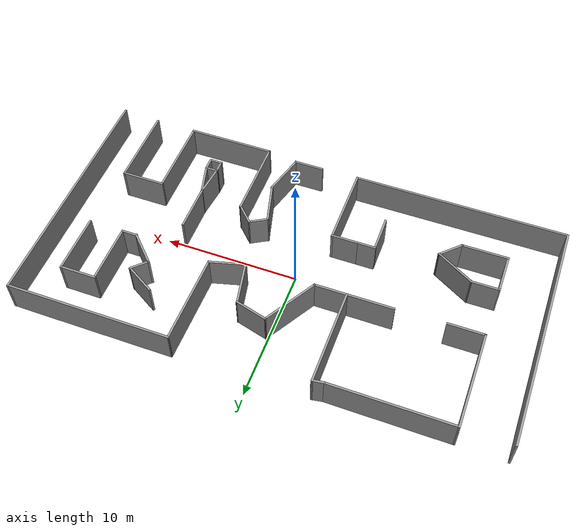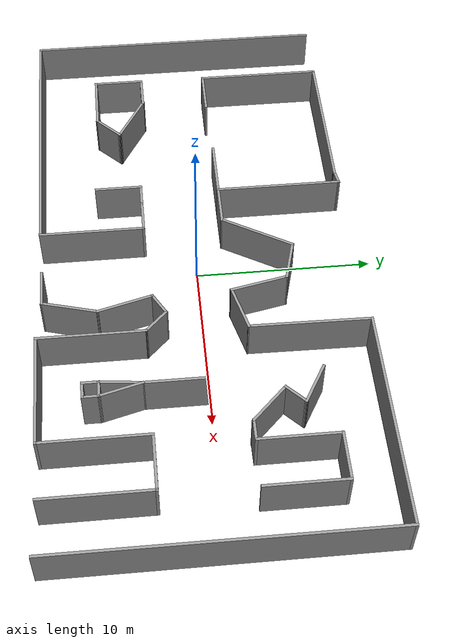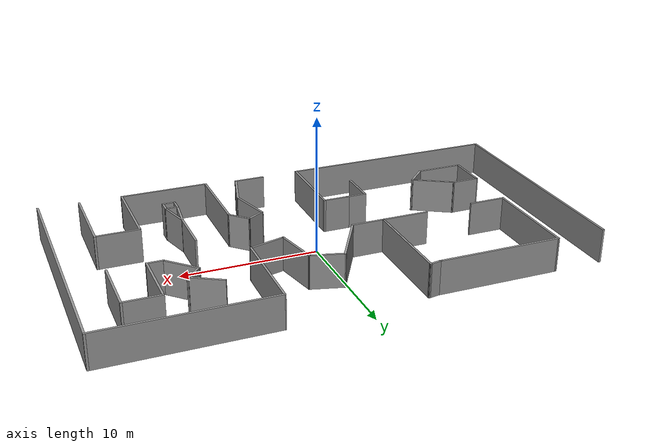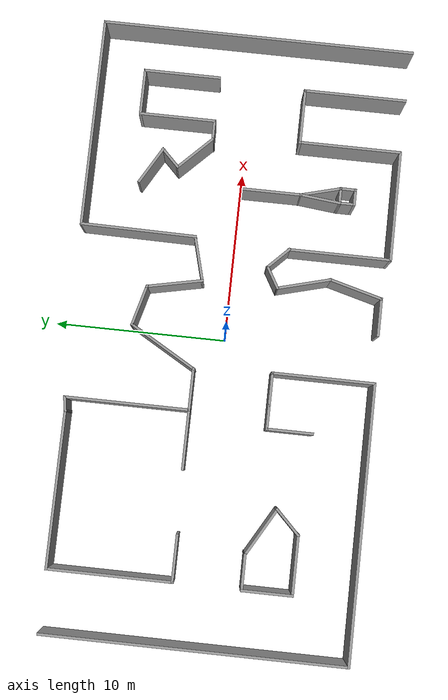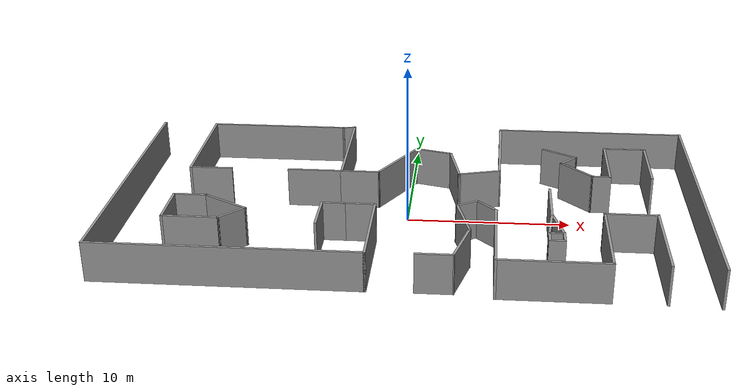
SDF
<sdf version="1.6">
 <world name="default">
  <model name="maze_for_two">
   <pose>0.098867 -0.089814 0 0 -0 0</pose>
   <link name="Wall_0">
    <collision name="Wall_0_Collision">
     <geometry><box><size>17.5 0.15 2.5</size></box></geometry>
     <pose>0 0 1.25 0 -0 0</pose>
    </collision>
    <visual name="Wall_0_Visual">
     <pose>0 0 1.25 0 -0 0</pose>
     <geometry><box><size>17.5 0.15 2.5</size></box></geometry>
     <material>
      <script><uri>file://media/materials/scripts/gazebo.material</uri><name>Gazebo/Grey</name></script>
      <ambient>1 1 1 1</ambient>
     </material>
     <meta><layer>0</layer></meta>
    </visual>
    <pose>-17.6993 0.034582 0 0 -0 -1.5708</pose>
   </link>
   <link name="Wall_1">
    <collision name="Wall_1_Collision">
     <geometry><box><size>16 0.15 2.5</size></box></geometry>
     <pose>0 0 1.25 0 -0 0</pose>
    </collision>
    <visual name="Wall_1_Visual">
     <pose>0 0 1.25 0 -0 0</pose>
     <geometry><box><size>16 0.15 2.5</size></box></geometry>
     <material>
      <script><uri>file://media/materials/scripts/gazebo.material</uri><name>Gazebo/Grey</name></script>
      <ambient>1 1 1 1</ambient>
     </material>
     <meta><layer>0</layer></meta>
    </visual>
    <pose>-9.77431 -8.64042 0 0 -0 0</pose>
   </link>
   <link name="Wall_11">
    <collision name="Wall_11_Collision">
     <geometry><box><size>3.5 0.15 2.5</size></box></geometry>
     <pose>0 0 1.25 0 -0 0</pose>
    </collision>
    <visual name="Wall_11_Visual">
     <pose>0 0 1.25 0 -0 0</pose>
     <geometry><box><size>3.5 0.15 2.5</size></box></geometry>
     <material>
      <script><uri>file://media/materials/scripts/gazebo.material</uri><name>Gazebo/Grey</name></script>
      <ambient>1 1 1 1</ambient>
     </material>
     <meta><layer>0</layer></meta>
    </visual>
    <pose>-12.4642 -5.14433 0 0 -0 0</pose>
   </link>
   <link name="Wall_13">
    <collision name="Wall_13_Collision">
     <geometry><box><size>2.75 0.15 2.5</size></box></geometry>
     <pose>0 0 1.25 0 -0 0</pose>
    </collision>
    <visual name="Wall_13_Visual">
     <pose>0 0 1.25 0 -0 0</pose>
     <geometry><box><size>2.75 0.15 2.5</size></box></geometry>
     <material>
      <script><uri>file://media/materials/scripts/gazebo.material</uri><name>Gazebo/Grey</name></script>
      <ambient>1 1 1 1</ambient>
     </material>
     <meta><layer>0</layer></meta>
    </visual>
    <pose>-12.7988 1.60958 0 0 -0 0</pose>
   </link>
   <link name="Wall_15">
    <collision name="Wall_15_Collision">
     <geometry><box><size>3.5 0.15 2.5</size></box></geometry>
     <pose>0 0 1.25 0 -0 0</pose>
    </collision>
    <visual name="Wall_15_Visual">
     <pose>0 0 1.25 0 -0 0</pose>
     <geometry><box><size>3.5 0.15 2.5</size></box></geometry>
     <material>
      <script><uri>file://media/materials/scripts/gazebo.material</uri><name>Gazebo/Grey</name></script>
      <ambient>1 1 1 1</ambient>
     </material>
     <meta><layer>0</layer></meta>
    </visual>
    <pose>-6.1127 1.71077 0 0 -0 0</pose>
   </link>
   <link name="Wall_17">
    <collision name="Wall_17_Collision">
     <geometry><box><size>9.04244 0.15 2.5</size></box></geometry>
     <pose>0 0 1.25 0 -0 0</pose>
    </collision>
    <visual name="Wall_17_Visual">
     <pose>0 0 1.25 0 -0 0</pose>
     <geometry><box><size>9.04244 0.15 2.5</size></box></geometry>
     <material>
      <script><uri>file://media/materials/scripts/gazebo.material</uri><name>Gazebo/Grey</name></script>
      <ambient>1 1 1 1</ambient>
     </material>
     <meta><layer>0</layer></meta>
    </visual>
    <pose>-9.65256 8.69949 0 0 -0 3.13932</pose>
   </link>
   <link name="Wall_19">
    <collision name="Wall_19_Collision">
     <geometry><box><size>7.25 0.15 2.5</size></box></geometry>
     <pose>0 0 1.25 0 -0 0</pose>
    </collision>
    <visual name="Wall_19_Visual">
     <pose>0 0 1.25 0 -0 0</pose>
     <geometry><box><size>7.25 0.15 2.5</size></box></geometry>
     <material>
      <script><uri>file://media/materials/scripts/gazebo.material</uri><name>Gazebo/Grey</name></script>
      <ambient>1 1 1 1</ambient>
     </material>
     <meta><layer>0</layer></meta>
    </visual>
    <pose>-4.4377 5.26077 0 0 -0 1.5708</pose>
   </link>
   <link name="Wall_2">
    <collision name="Wall_2_Collision">
     <geometry><box><size>6 0.15 2.5</size></box></geometry>
     <pose>0 0 1.25 0 -0 0</pose>
    </collision>
    <visual name="Wall_2_Visual">
     <pose>0 0 1.25 0 -0 0</pose>
     <geometry><box><size>6 0.15 2.5</size></box></geometry>
     <material>
      <script><uri>file://media/materials/scripts/gazebo.material</uri><name>Gazebo/Grey</name></script>
      <ambient>1 1 1 1</ambient>
     </material>
     <meta><layer>0</layer></meta>
    </visual>
    <pose>-1.84932 -5.71542 0 0 -0 1.5708</pose>
   </link>
   <link name="Wall_20">
    <collision name="Wall_20_Collision">
     <geometry><box><size>0.928179 0.15 2.5</size></box></geometry>
     <pose>0 0 1.25 0 -0 0</pose>
    </collision>
    <visual name="Wall_20_Visual">
     <pose>0 0 1.25 0 -0 0</pose>
     <geometry><box><size>0.928179 0.15 2.5</size></box></geometry>
     <material>
      <script><uri>file://media/materials/scripts/gazebo.material</uri><name>Gazebo/Grey</name></script>
      <ambient>1 1 1 1</ambient>
     </material>
     <meta><layer>0</layer></meta>
    </visual>
    <pose>-4.82203 8.75008 0 0 -0 -2.98499</pose>
   </link>
   <link name="Wall_22">
    <collision name="Wall_22_Collision">
     <geometry><box><size>2 0.15 2.5</size></box></geometry>
     <pose>0 0 1.25 0 -0 0</pose>
    </collision>
    <visual name="Wall_22_Visual">
     <pose>0 0 1.25 0 -0 0</pose>
     <geometry><box><size>2 0.15 2.5</size></box></geometry>
     <material>
      <script><uri>file://media/materials/scripts/gazebo.material</uri><name>Gazebo/Grey</name></script>
      <ambient>1 1 1 1</ambient>
     </material>
     <meta><layer>0</layer></meta>
    </visual>
    <pose>-10.1352 -4.49026 0 0 -0 0.785398</pose>
   </link>
   <link name="Wall_23">
    <collision name="Wall_23_Collision">
     <geometry><box><size>3.25 0.15 2.5</size></box></geometry>
     <pose>0 0 1.25 0 -0 0</pose>
    </collision>
    <visual name="Wall_23_Visual">
     <pose>0 0 1.25 0 -0 0</pose>
     <geometry><box><size>3.25 0.15 2.5</size></box></geometry>
     <material>
      <script><uri>file://media/materials/scripts/gazebo.material</uri><name>Gazebo/Grey</name></script>
      <ambient>1 1 1 1</ambient>
     </material>
     <meta><layer>0</layer></meta>
    </visual>
    <pose>-10.8234 -3.06119 0 0 -0 2.61799</pose>
   </link>
   <link name="Wall_24">
    <collision name="Wall_24_Collision">
     <geometry><box><size>2.12349 0.15 2.5</size></box></geometry>
     <pose>0 0 1.25 0 -0 0</pose>
    </collision>
    <visual name="Wall_24_Visual">
     <pose>0 0 1.25 0 -0 0</pose>
     <geometry><box><size>2.12349 0.15 2.5</size></box></geometry>
     <material>
      <script><uri>file://media/materials/scripts/gazebo.material</uri><name>Gazebo/Grey</name></script>
      <ambient>1 1 1 1</ambient>
     </material>
     <meta><layer>0</layer></meta>
    </visual>
    <pose>-13.1525 -2.29026 0 0 -0 -3.13746</pose>
   </link>
   <link name="Wall_26">
    <collision name="Wall_26_Collision">
     <geometry><box><size>2.5 0.15 2.5</size></box></geometry>
     <pose>0 0 1.25 0 -0 0</pose>
    </collision>
    <visual name="Wall_26_Visual">
     <pose>0 0 1.25 0 -0 0</pose>
     <geometry><box><size>2.5 0.15 2.5</size></box></geometry>
     <material>
      <script><uri>file://media/materials/scripts/gazebo.material</uri><name>Gazebo/Grey</name></script>
      <ambient>1 1 1 1</ambient>
     </material>
     <meta><layer>0</layer></meta>
    </visual>
    <pose>-3.2627 1.71077 0 0 -0 0</pose>
   </link>
   <link name="Wall_28">
    <collision name="Wall_28_Collision">
     <geometry><box><size>6 0.15 2.5</size></box></geometry>
     <pose>0 0 1.25 0 -0 0</pose>
    </collision>
    <visual name="Wall_28_Visual">
     <pose>0 0 1.25 0 -0 0</pose>
     <geometry><box><size>6 0.15 2.5</size></box></geometry>
     <material>
      <script><uri>file://media/materials/scripts/gazebo.material</uri><name>Gazebo/Grey</name></script>
      <ambient>1 1 1 1</ambient>
     </material>
     <meta><layer>0</layer></meta>
    </visual>
    <pose>14.7865 -5.96359 0 0 -0 1.5708</pose>
   </link>
   <link name="Wall_29">
    <collision name="Wall_29_Collision">
     <geometry><box><size>3.25 0.15 2.5</size></box></geometry>
     <pose>0 0 1.25 0 -0 0</pose>
    </collision>
    <visual name="Wall_29_Visual">
     <pose>0 0 1.25 0 -0 0</pose>
     <geometry><box><size>3.25 0.15 2.5</size></box></geometry>
     <material>
      <script><uri>file://media/materials/scripts/gazebo.material</uri><name>Gazebo/Grey</name></script>
      <ambient>1 1 1 1</ambient>
     </material>
     <meta><layer>0</layer></meta>
    </visual>
    <pose>13.2365 -3.03859 0 0 -0 3.14159</pose>
   </link>
   <link name="Wall_3">
    <collision name="Wall_3_Collision">
     <geometry><box><size>2 0.15 2.5</size></box></geometry>
     <pose>0 0 1.25 0 -0 0</pose>
    </collision>
    <visual name="Wall_3_Visual">
     <pose>0 0 1.25 0 -0 0</pose>
     <geometry><box><size>2 0.15 2.5</size></box></geometry>
     <material>
      <script><uri>file://media/materials/scripts/gazebo.material</uri><name>Gazebo/Grey</name></script>
      <ambient>1 1 1 1</ambient>
     </material>
     <meta><layer>0</layer></meta>
    </visual>
    <pose>-2.77432 -2.79042 0 0 -0 3.14159</pose>
   </link>
   <link name="Wall_30">
    <collision name="Wall_30_Collision">
     <geometry><box><size>6 0.15 2.5</size></box></geometry>
     <pose>0 0 1.25 0 -0 0</pose>
    </collision>
    <visual name="Wall_30_Visual">
     <pose>0 0 1.25 0 -0 0</pose>
     <geometry><box><size>6 0.15 2.5</size></box></geometry>
     <material>
      <script><uri>file://media/materials/scripts/gazebo.material</uri><name>Gazebo/Grey</name></script>
      <ambient>1 1 1 1</ambient>
     </material>
     <meta><layer>0</layer></meta>
    </visual>
    <pose>11.6865 -5.96359 0 0 -0 -1.5708</pose>
   </link>
   <link name="Wall_31">
    <collision name="Wall_31_Collision">
     <geometry><box><size>6.5 0.15 2.5</size></box></geometry>
     <pose>0 0 1.25 0 -0 0</pose>
    </collision>
    <visual name="Wall_31_Visual">
     <pose>0 0 1.25 0 -0 0</pose>
     <geometry><box><size>6.5 0.15 2.5</size></box></geometry>
     <material>
      <script><uri>file://media/materials/scripts/gazebo.material</uri><name>Gazebo/Grey</name></script>
      <ambient>1 1 1 1</ambient>
     </material>
     <meta><layer>0</layer></meta>
    </visual>
    <pose>8.51151 -8.88859 0 0 -0 3.14159</pose>
   </link>
   <link name="Wall_32">
    <collision name="Wall_32_Collision">
     <geometry><box><size>6 0.15 2.5</size></box></geometry>
     <pose>0 0 1.25 0 -0 0</pose>
    </collision>
    <visual name="Wall_32_Visual">
     <pose>0 0 1.25 0 -0 0</pose>
     <geometry><box><size>6 0.15 2.5</size></box></geometry>
     <material>
      <script><uri>file://media/materials/scripts/gazebo.material</uri><name>Gazebo/Grey</name></script>
      <ambient>1 1 1 1</ambient>
     </material>
     <meta><layer>0</layer></meta>
    </visual>
    <pose>5.33651 -5.96359 0 0 -0 1.5708</pose>
   </link>
   <link name="Wall_33">
    <collision name="Wall_33_Collision">
     <geometry><box><size>1.75 0.15 2.5</size></box></geometry>
     <pose>0 0 1.25 0 -0 0</pose>
    </collision>
    <visual name="Wall_33_Visual">
     <pose>0 0 1.25 0 -0 0</pose>
     <geometry><box><size>1.75 0.15 2.5</size></box></geometry>
     <material>
      <script><uri>file://media/materials/scripts/gazebo.material</uri><name>Gazebo/Grey</name></script>
      <ambient>1 1 1 1</ambient>
     </material>
     <meta><layer>0</layer></meta>
    </visual>
    <pose>4.77083 -2.47291 0 0 -0 2.35619</pose>
   </link>
   <link name="Wall_34">
    <collision name="Wall_34_Collision">
     <geometry><box><size>1.5 0.15 2.5</size></box></geometry>
     <pose>0 0 1.25 0 -0 0</pose>
    </collision>
    <visual name="Wall_34_Visual">
     <pose>0 0 1.25 0 -0 0</pose>
     <geometry><box><size>1.5 0.15 2.5</size></box></geometry>
     <material>
      <script><uri>file://media/materials/scripts/gazebo.material</uri><name>Gazebo/Grey</name></script>
      <ambient>1 1 1 1</ambient>
     </material>
     <meta><layer>0</layer></meta>
    </visual>
    <pose>3.62058 -2.24472 0 0 -0 -2.61799</pose>
   </link>
   <link name="Wall_36">
    <collision name="Wall_36_Collision">
     <geometry><box><size>2.75 0.15 2.5</size></box></geometry>
     <pose>0 0 1.25 0 -0 0</pose>
    </collision>
    <visual name="Wall_36_Visual">
     <pose>0 0 1.25 0 -0 0</pose>
     <geometry><box><size>2.75 0.15 2.5</size></box></geometry>
     <material>
      <script><uri>file://media/materials/scripts/gazebo.material</uri><name>Gazebo/Grey</name></script>
      <ambient>1 1 1 1</ambient>
     </material>
     <meta><layer>0</layer></meta>
    </visual>
    <pose>4.26964 2.08769 0 0 -0 0.261799</pose>
   </link>
   <link name="Wall_4">
    <collision name="Wall_4_Collision">
     <geometry><box><size>1.5 0.15 2.5</size></box></geometry>
     <pose>0 0 1.25 0 -0 0</pose>
    </collision>
    <visual name="Wall_4_Visual">
     <pose>0 0 1.25 0 -0 0</pose>
     <geometry><box><size>1.5 0.15 2.5</size></box></geometry>
     <material>
      <script><uri>file://media/materials/scripts/gazebo.material</uri><name>Gazebo/Grey</name></script>
      <ambient>1 1 1 1</ambient>
     </material>
     <meta><layer>0</layer></meta>
    </visual>
    <pose>-4.37432 -2.79042 0 0 -0 3.14159</pose>
   </link>
   <link name="Wall_43">
    <collision name="Wall_43_Collision">
     <geometry><box><size>3.5 0.15 2.5</size></box></geometry>
     <pose>0 0 1.25 0 -0 0</pose>
    </collision>
    <visual name="Wall_43_Visual">
     <pose>0 0 1.25 0 -0 0</pose>
     <geometry><box><size>3.5 0.15 2.5</size></box></geometry>
     <material>
      <script><uri>file://media/materials/scripts/gazebo.material</uri><name>Gazebo/Grey</name></script>
      <ambient>1 1 1 1</ambient>
     </material>
     <meta><layer>0</layer></meta>
    </visual>
    <pose>8.59681 -1.71164 0 0 -0 1.5708</pose>
   </link>
   <link name="Wall_45">
    <collision name="Wall_45_Collision">
     <geometry><box><size>2.5 0.15 2.5</size></box></geometry>
     <pose>0 0 1.25 0 -0 0</pose>
    </collision>
    <visual name="Wall_45_Visual">
     <pose>0 0 1.25 0 -0 0</pose>
     <geometry><box><size>2.5 0.15 2.5</size></box></geometry>
     <material>
      <script><uri>file://media/materials/scripts/gazebo.material</uri><name>Gazebo/Grey</name></script>
      <ambient>1 1 1 1</ambient>
     </material>
     <meta><layer>0</layer></meta>
    </visual>
    <pose>8.90092 -4.5216 0 0 -0 -1.309</pose>
   </link>
   <link name="Wall_46">
    <collision name="Wall_46_Collision">
     <geometry><box><size>1 0.15 2.5</size></box></geometry>
     <pose>0 0 1.25 0 -0 0</pose>
    </collision>
    <visual name="Wall_46_Visual">
     <pose>0 0 1.25 0 -0 0</pose>
     <geometry><box><size>1 0.15 2.5</size></box></geometry>
     <material>
      <script><uri>file://media/materials/scripts/gazebo.material</uri><name>Gazebo/Grey</name></script>
      <ambient>1 1 1 1</ambient>
     </material>
     <meta><layer>0</layer></meta>
    </visual>
    <pose>8.78003 -5.65656 0 0 -0 3.14159</pose>
   </link>
   <link name="Wall_47">
    <collision name="Wall_47_Collision">
     <geometry><box><size>2.43276 0.15 2.5</size></box></geometry>
     <pose>0 0 1.25 0 -0 0</pose>
    </collision>
    <visual name="Wall_47_Visual">
     <pose>0 0 1.25 0 -0 0</pose>
     <geometry><box><size>2.43276 0.15 2.5</size></box></geometry>
     <material>
      <script><uri>file://media/materials/scripts/gazebo.material</uri><name>Gazebo/Grey</name></script>
      <ambient>1 1 1 1</ambient>
     </material>
     <meta><layer>0</layer></meta>
    </visual>
    <pose>8.47592 -4.5216 0 0 -0 1.46468</pose>
   </link>
   <link name="Wall_5">
    <collision name="Wall_5_Collision">
     <geometry><box><size>2.75 0.15 2.5</size></box></geometry>
     <pose>0 0 1.25 0 -0 0</pose>
    </collision>
    <visual name="Wall_5_Visual">
     <pose>0 0 1.25 0 -0 0</pose>
     <geometry><box><size>2.75 0.15 2.5</size></box></geometry>
     <material>
      <script><uri>file://media/materials/scripts/gazebo.material</uri><name>Gazebo/Grey</name></script>
      <ambient>1 1 1 1</ambient>
     </material>
     <meta><layer>0</layer></meta>
    </visual>
    <pose>-5.04931 -4.09042 0 0 -0 -1.5708</pose>
   </link>
   <link name="Wall_51">
    <collision name="Wall_51_Collision">
     <geometry><box><size>1 0.15 2.5</size></box></geometry>
     <pose>0 0 1.25 0 -0 0</pose>
    </collision>
    <visual name="Wall_51_Visual">
     <pose>0 0 1.25 0 -0 0</pose>
     <geometry><box><size>1 0.15 2.5</size></box></geometry>
     <material>
      <script><uri>file://media/materials/scripts/gazebo.material</uri><name>Gazebo/Grey</name></script>
      <ambient>1 1 1 1</ambient>
     </material>
     <meta><layer>0</layer></meta>
    </visual>
    <pose>8.35504 -6.08156 0 0 -0 -1.5708</pose>
   </link>
   <link name="Wall_52">
    <collision name="Wall_52_Collision">
     <geometry><box><size>1 0.15 2.5</size></box></geometry>
     <pose>0 0 1.25 0 -0 0</pose>
    </collision>
    <visual name="Wall_52_Visual">
     <pose>0 0 1.25 0 -0 0</pose>
     <geometry><box><size>1 0.15 2.5</size></box></geometry>
     <material>
      <script><uri>file://media/materials/scripts/gazebo.material</uri><name>Gazebo/Grey</name></script>
      <ambient>1 1 1 1</ambient>
     </material>
     <meta><layer>0</layer></meta>
    </visual>
    <pose>8.78003 -6.50656 0 0 -0 0</pose>
   </link>
   <link name="Wall_53">
    <collision name="Wall_53_Collision">
     <geometry><box><size>1 0.15 2.5</size></box></geometry>
     <pose>0 0 1.25 0 -0 0</pose>
    </collision>
    <visual name="Wall_53_Visual">
     <pose>0 0 1.25 0 -0 0</pose>
     <geometry><box><size>1 0.15 2.5</size></box></geometry>
     <material>
      <script><uri>file://media/materials/scripts/gazebo.material</uri><name>Gazebo/Grey</name></script>
      <ambient>1 1 1 1</ambient>
     </material>
     <meta><layer>0</layer></meta>
    </visual>
    <pose>9.20504 -6.08156 0 0 -0 1.5708</pose>
   </link>
   <link name="Wall_55">
    <collision name="Wall_55_Collision">
     <geometry><box><size>18.25 0.15 2.5</size></box></geometry>
     <pose>0 0 1.25 0 -0 0</pose>
    </collision>
    <visual name="Wall_55_Visual">
     <pose>0 0 1.25 0 -0 0</pose>
     <geometry><box><size>18.25 0.15 2.5</size></box></geometry>
     <material>
      <script><uri>file://media/materials/scripts/gazebo.material</uri><name>Gazebo/Grey</name></script>
      <ambient>1 1 1 1</ambient>
     </material>
     <meta><layer>0</layer></meta>
    </visual>
    <pose>17.6993 -0.000416 0 0 -0 1.5708</pose>
   </link>
   <link name="Wall_56">
    <collision name="Wall_56_Collision">
     <geometry><box><size>12.25 0.15 2.5</size></box></geometry>
     <pose>0 0 1.25 0 -0 0</pose>
    </collision>
    <visual name="Wall_56_Visual">
     <pose>0 0 1.25 0 -0 0</pose>
     <geometry><box><size>12.25 0.15 2.5</size></box></geometry>
     <material>
      <script><uri>file://media/materials/scripts/gazebo.material</uri><name>Gazebo/Grey</name></script>
      <ambient>1 1 1 1</ambient>
     </material>
     <meta><layer>0</layer></meta>
    </visual>
    <pose>11.6493 9.04958 0 0 -0 3.14159</pose>
   </link>
   <link name="Wall_57">
    <collision name="Wall_57_Collision">
     <geometry><box><size>6.77584 0.15 2.5</size></box></geometry>
     <pose>0 0 1.25 0 -0 0</pose>
    </collision>
    <visual name="Wall_57_Visual">
     <pose>0 0 1.25 0 -0 0</pose>
     <geometry><box><size>6.77584 0.15 2.5</size></box></geometry>
     <material>
      <script><uri>file://media/materials/scripts/gazebo.material</uri><name>Gazebo/Grey</name></script>
      <ambient>1 1 1 1</ambient>
     </material>
     <meta><layer>0</layer></meta>
    </visual>
    <pose>5.56233 5.73687 0 0 -0 -1.58196</pose>
   </link>
   <link name="Wall_59">
    <collision name="Wall_59_Collision">
     <geometry><box><size>4.5 0.15 2.5</size></box></geometry>
     <pose>0 0 1.25 0 -0 0</pose>
    </collision>
    <visual name="Wall_59_Visual">
     <pose>0 0 1.25 0 -0 0</pose>
     <geometry><box><size>4.5 0.15 2.5</size></box></geometry>
     <material>
      <script><uri>file://media/materials/scripts/gazebo.material</uri><name>Gazebo/Grey</name></script>
      <ambient>1 1 1 1</ambient>
     </material>
     <meta><layer>0</layer></meta>
    </visual>
    <pose>15.0292 4.20941 0 0 -0 1.5708</pose>
   </link>
   <link name="Wall_60">
    <collision name="Wall_60_Collision">
     <geometry><box><size>2.75 0.15 2.5</size></box></geometry>
     <pose>0 0 1.25 0 -0 0</pose>
    </collision>
    <visual name="Wall_60_Visual">
     <pose>0 0 1.25 0 -0 0</pose>
     <geometry><box><size>2.75 0.15 2.5</size></box></geometry>
     <material>
      <script><uri>file://media/materials/scripts/gazebo.material</uri><name>Gazebo/Grey</name></script>
      <ambient>1 1 1 1</ambient>
     </material>
     <meta><layer>0</layer></meta>
    </visual>
    <pose>13.7292 6.38441 0 0 -0 3.14159</pose>
   </link>
   <link name="Wall_61">
    <collision name="Wall_61_Collision">
     <geometry><box><size>4.5 0.15 2.5</size></box></geometry>
     <pose>0 0 1.25 0 -0 0</pose>
    </collision>
    <visual name="Wall_61_Visual">
     <pose>0 0 1.25 0 -0 0</pose>
     <geometry><box><size>4.5 0.15 2.5</size></box></geometry>
     <material>
      <script><uri>file://media/materials/scripts/gazebo.material</uri><name>Gazebo/Grey</name></script>
      <ambient>1 1 1 1</ambient>
     </material>
     <meta><layer>0</layer></meta>
    </visual>
    <pose>12.4292 4.20941 0 0 -0 -1.5708</pose>
   </link>
   <link name="Wall_62">
    <collision name="Wall_62_Collision">
     <geometry><box><size>1.25 0.15 2.5</size></box></geometry>
     <pose>0 0 1.25 0 -0 0</pose>
    </collision>
    <visual name="Wall_62_Visual">
     <pose>0 0 1.25 0 -0 0</pose>
     <geometry><box><size>1.25 0.15 2.5</size></box></geometry>
     <material>
      <script><uri>file://media/materials/scripts/gazebo.material</uri><name>Gazebo/Grey</name></script>
      <ambient>1 1 1 1</ambient>
     </material>
     <meta><layer>0</layer></meta>
    </visual>
    <pose>11.8792 2.03441 0 0 -0 3.14159</pose>
   </link>
   <link name="Wall_64">
    <collision name="Wall_64_Collision">
     <geometry><box><size>2.75 0.15 2.5</size></box></geometry>
     <pose>0 0 1.25 0 -0 0</pose>
    </collision>
    <visual name="Wall_64_Visual">
     <pose>0 0 1.25 0 -0 0</pose>
     <geometry><box><size>2.75 0.15 2.5</size></box></geometry>
     <material>
      <script><uri>file://media/materials/scripts/gazebo.material</uri><name>Gazebo/Grey</name></script>
      <ambient>1 1 1 1</ambient>
     </material>
     <meta><layer>0</layer></meta>
    </visual>
    <pose>10.41 2.95365 0 0 -0 2.35619</pose>
   </link>
   <link name="Wall_65">
    <collision name="Wall_65_Collision">
     <geometry><box><size>1.5 0.15 2.5</size></box></geometry>
     <pose>0 0 1.25 0 -0 0</pose>
    </collision>
    <visual name="Wall_65_Visual">
     <pose>0 0 1.25 0 -0 0</pose>
     <geometry><box><size>1.5 0.15 2.5</size></box></geometry>
     <material>
      <script><uri>file://media/materials/scripts/gazebo.material</uri><name>Gazebo/Grey</name></script>
      <ambient>1 1 1 1</ambient>
     </material>
     <meta><layer>0</layer></meta>
    </visual>
    <pose>9.96807 4.35019 0 0 -0 0.785398</pose>
   </link>
   <link name="Wall_66">
    <collision name="Wall_66_Collision">
     <geometry><box><size>2.5 0.15 2.5</size></box></geometry>
     <pose>0 0 1.25 0 -0 0</pose>
    </collision>
    <visual name="Wall_66_Visual">
     <pose>0 0 1.25 0 -0 0</pose>
     <geometry><box><size>2.5 0.15 2.5</size></box></geometry>
     <material>
      <script><uri>file://media/materials/scripts/gazebo.material</uri><name>Gazebo/Grey</name></script>
      <ambient>1 1 1 1</ambient>
     </material>
     <meta><layer>0</layer></meta>
    </visual>
    <pose>9.42778 5.41498 0 0 -0 2.61799</pose>
   </link>
   <link name="Wall_68">
    <collision name="Wall_68_Collision">
     <geometry><box><size>4.5 0.15 2.5</size></box></geometry>
     <pose>0 0 1.25 0 -0 0</pose>
    </collision>
    <visual name="Wall_68_Visual">
     <pose>0 0 1.25 0 -0 0</pose>
     <geometry><box><size>4.5 0.15 2.5</size></box></geometry>
     <material>
      <script><uri>file://media/materials/scripts/gazebo.material</uri><name>Gazebo/Grey</name></script>
      <ambient>1 1 1 1</ambient>
     </material>
     <meta><layer>0</layer></meta>
    </visual>
    <pose>-1.0002 3.59437 0 0 -0 1.0472</pose>
   </link>
   <link name="Wall_69">
    <collision name="Wall_69_Collision">
     <geometry><box><size>2.5 0.15 2.5</size></box></geometry>
     <pose>0 0 1.25 0 -0 0</pose>
    </collision>
    <visual name="Wall_69_Visual">
     <pose>0 0 1.25 0 -0 0</pose>
     <geometry><box><size>2.5 0.15 2.5</size></box></geometry>
     <material>
      <script><uri>file://media/materials/scripts/gazebo.material</uri><name>Gazebo/Grey</name></script>
      <ambient>1 1 1 1</ambient>
     </material>
     <meta><layer>0</layer></meta>
    </visual>
    <pose>1.22226 5.17387 0 0 -0 -0.261799</pose>
   </link>
   <link name="Wall_7">
    <collision name="Wall_7_Collision">
     <geometry><box><size>7.25 0.15 2.5</size></box></geometry>
     <pose>0 0 1.25 0 -0 0</pose>
    </collision>
    <visual name="Wall_7_Visual">
     <pose>0 0 1.25 0 -0 0</pose>
     <geometry><box><size>7.25 0.15 2.5</size></box></geometry>
     <material>
      <script><uri>file://media/materials/scripts/gazebo.material</uri><name>Gazebo/Grey</name></script>
      <ambient>1 1 1 1</ambient>
     </material>
     <meta><layer>0</layer></meta>
    </visual>
    <pose>-14.0988 5.15958 0 0 -0 -1.5708</pose>
   </link>
   <link name="Wall_70">
    <collision name="Wall_70_Collision">
     <geometry><box><size>3.33693 0.15 2.5</size></box></geometry>
     <pose>0 0 1.25 0 -0 0</pose>
    </collision>
    <visual name="Wall_70_Visual">
     <pose>0 0 1.25 0 -0 0</pose>
     <geometry><box><size>3.33693 0.15 2.5</size></box></geometry>
     <material>
      <script><uri>file://media/materials/scripts/gazebo.material</uri><name>Gazebo/Grey</name></script>
      <ambient>1 1 1 1</ambient>
     </material>
     <meta><layer>0</layer></meta>
    </visual>
    <pose>2.68558 3.31049 0 0 -0 -1.36325</pose>
   </link>
   <link name="Wall_72">
    <collision name="Wall_72_Collision">
     <geometry><box><size>3.25 0.15 2.5</size></box></geometry>
     <pose>0 0 1.25 0 -0 0</pose>
    </collision>
    <visual name="Wall_72_Visual">
     <pose>0 0 1.25 0 -0 0</pose>
     <geometry><box><size>3.25 0.15 2.5</size></box></geometry>
     <material>
      <script><uri>file://media/materials/scripts/gazebo.material</uri><name>Gazebo/Grey</name></script>
      <ambient>1 1 1 1</ambient>
     </material>
     <meta><layer>0</layer></meta>
    </visual>
    <pose>3.43718 -4.07941 0 0 -0 -1.309</pose>
   </link>
   <link name="Wall_73">
    <collision name="Wall_73_Collision">
     <geometry><box><size>3.25 0.15 2.5</size></box></geometry>
     <pose>0 0 1.25 0 -0 0</pose>
    </collision>
    <visual name="Wall_73_Visual">
     <pose>0 0 1.25 0 -0 0</pose>
     <geometry><box><size>3.25 0.15 2.5</size></box></geometry>
     <material>
      <script><uri>file://media/materials/scripts/gazebo.material</uri><name>Gazebo/Grey</name></script>
      <ambient>1 1 1 1</ambient>
     </material>
     <meta><layer>0</layer></meta>
    </visual>
    <pose>3.43718 -7.07378 0 0 -0 -1.8326</pose>
   </link>
   <link name="Wall_74">
    <collision name="Wall_74_Collision">
     <geometry><box><size>2.25 0.15 2.5</size></box></geometry>
     <pose>0 0 1.25 0 -0 0</pose>
    </collision>
    <visual name="Wall_74_Visual">
     <pose>0 0 1.25 0 -0 0</pose>
     <geometry><box><size>2.25 0.15 2.5</size></box></geometry>
     <material>
      <script><uri>file://media/materials/scripts/gazebo.material</uri><name>Gazebo/Grey</name></script>
      <ambient>1 1 1 1</ambient>
     </material>
     <meta><layer>0</layer></meta>
    </visual>
    <pose>1.98601 -8.57096 0 0 -0 3.14159</pose>
   </link>
   <link name="Wall_9">
    <collision name="Wall_9_Collision">
     <geometry><box><size>3 0.15 2.5</size></box></geometry>
     <pose>0 0 1.25 0 -0 0</pose>
    </collision>
    <visual name="Wall_9_Visual">
     <pose>0 0 1.25 0 -0 0</pose>
     <geometry><box><size>3 0.15 2.5</size></box></geometry>
     <material>
      <script><uri>file://media/materials/scripts/gazebo.material</uri><name>Gazebo/Grey</name></script>
      <ambient>1 1 1 1</ambient>
     </material>
     <meta><layer>0</layer></meta>
    </visual>
    <pose>-14.1392 -3.71934 0 0 -0 -1.5708</pose>
   </link>
   <static>1</static>
  </model>
 </world>
</sdf>
